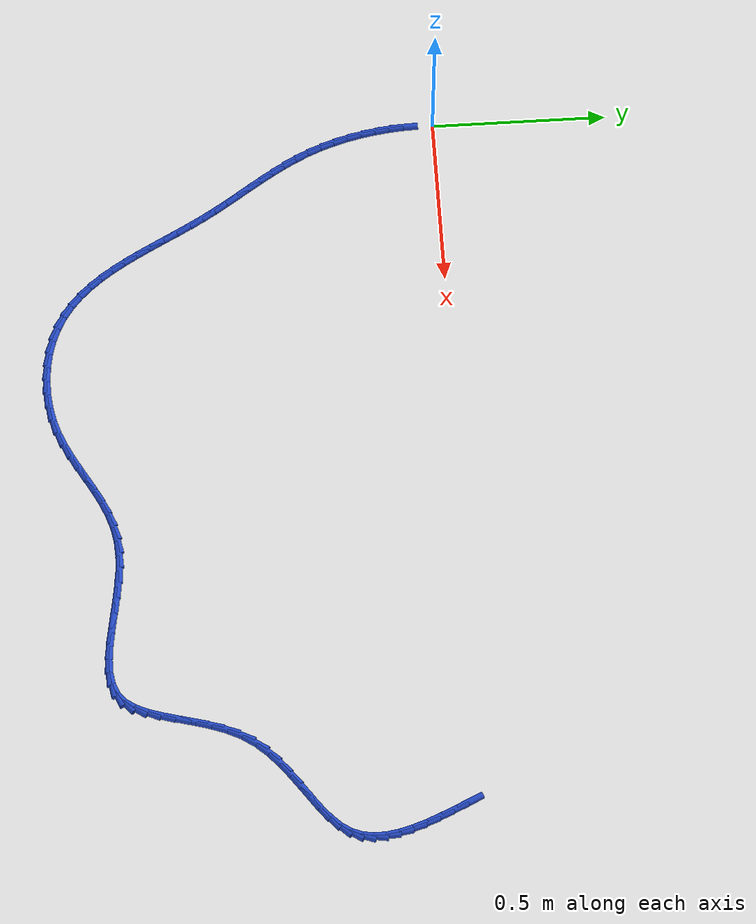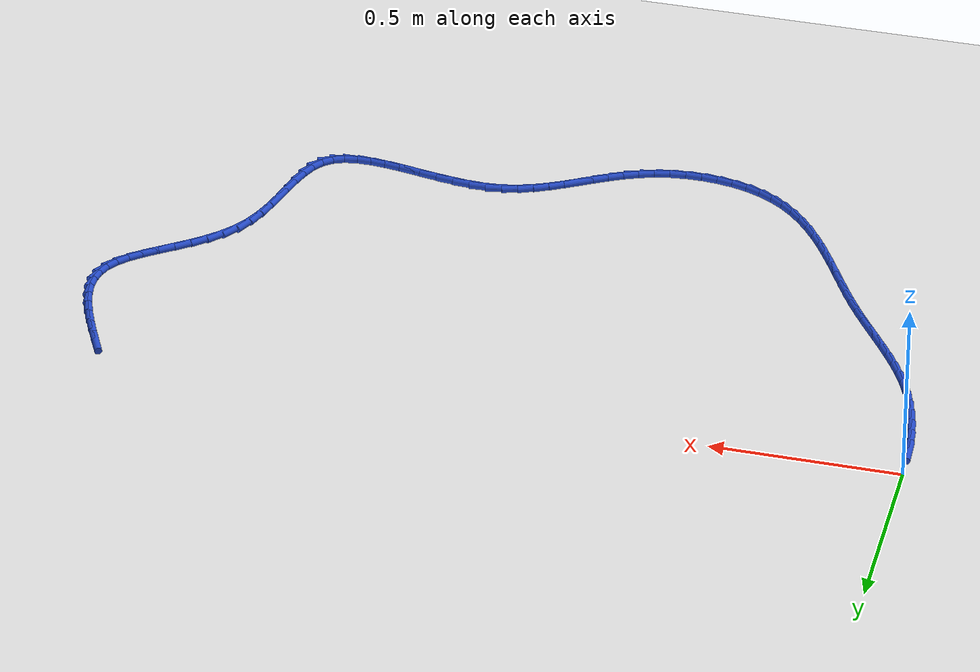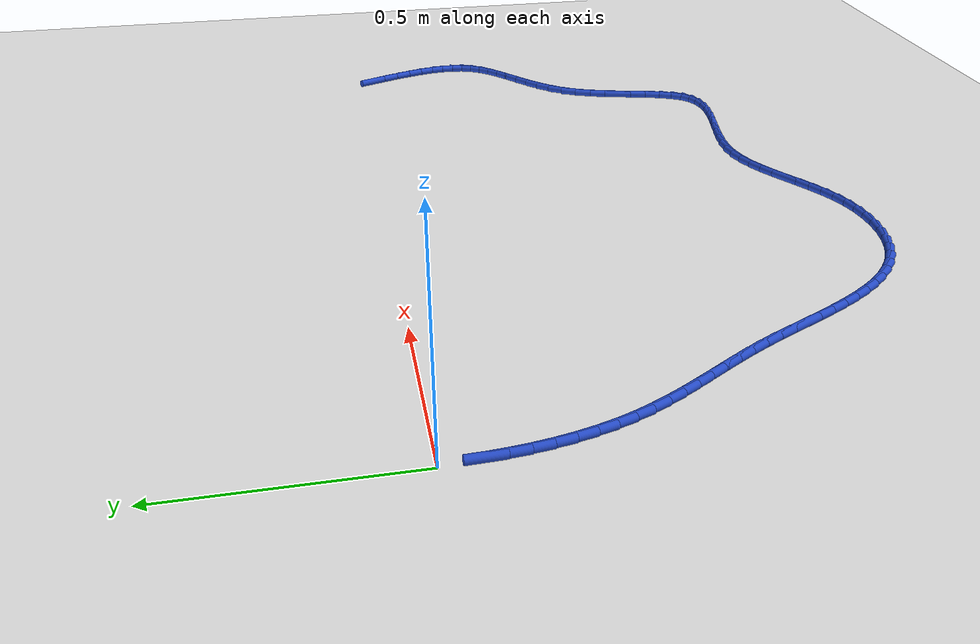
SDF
<sdf version="1.6">
 <world name="default">
  <model name="ground_plane">
   <static>1</static>
   <link name="link">
    <collision name="collision">
     <geometry><plane><normal>0 0 1</normal><size>100 100</size></plane></geometry>
     <surface><friction><ode><mu>100</mu><mu2>50</mu2></ode></friction></surface>
    </collision>
    <visual name="visual">
     <cast_shadows>0</cast_shadows>
     <geometry><plane><normal>0 0 1</normal><size>100 100</size></plane></geometry>
     <material>
      <script><uri>file://media/materials/scripts/gazebo.material</uri><name>Gazebo/WhiteGlow</name></script>
     </material>
    </visual>
   </link>
  </model>
  <model name="line">
   <link name="link_83">
    <pose>2.1221449141982656 -0.051328181934157016 0.01 0 1.57 -1.1310460525495147</pose>
    <collision name="collision">
     <geometry><cylinder><radius>0.01</radius><length>0.08</length></cylinder></geometry>
    </collision>
    <visual name="visual">
     <material>
      <script><name>Gazebo/Blue</name><uri>file://media/materials/scripts/gazebo.material</uri></script>
     </material>
     <geometry><cylinder><radius>0.01</radius><length>0.08</length></cylinder></geometry>
    </visual>
   </link>
   <link name="link_84">
    <pose>2.1419706922389095 -0.09346805633684824 0.01 0 1.57 -1.149286124274897</pose>
    <collision name="collision">
     <geometry><cylinder><radius>0.01</radius><length>0.08</length></cylinder></geometry>
    </collision>
    <visual name="visual">
     <material>
      <script><name>Gazebo/Blue</name><uri>file://media/materials/scripts/gazebo.material</uri></script>
     </material>
     <geometry><cylinder><radius>0.01</radius><length>0.08</length></cylinder></geometry>
    </visual>
   </link>
   <link name="link_85">
    <pose>2.1603775538515713 -0.13451950886848824 0.01 0 1.57 -1.1828577386332282</pose>
    <collision name="collision">
     <geometry><cylinder><radius>0.01</radius><length>0.08</length></cylinder></geometry>
    </collision>
    <visual name="visual">
     <material>
      <script><name>Gazebo/Blue</name><uri>file://media/materials/scripts/gazebo.material</uri></script>
     </material>
     <geometry><cylinder><radius>0.01</radius><length>0.08</length></cylinder></geometry>
    </visual>
   </link>
   <link name="link_86">
    <pose>2.176652065108952 -0.17434483989400337 0.01 0 1.57 -1.2348814770457108</pose>
    <collision name="collision">
     <geometry><cylinder><radius>0.01</radius><length>0.08</length></cylinder></geometry>
    </collision>
    <visual name="visual">
     <material>
      <script><name>Gazebo/Blue</name><uri>file://media/materials/scripts/gazebo.material</uri></script>
     </material>
     <geometry><cylinder><radius>0.01</radius><length>0.08</length></cylinder></geometry>
    </visual>
   </link>
   <link name="link_87">
    <pose>2.1900807920837515 -0.21280634977831975 0.01 0 1.57 -1.3098526611199754</pose>
    <collision name="collision">
     <geometry><cylinder><radius>0.01</radius><length>0.08</length></cylinder></geometry>
    </collision>
    <visual name="visual">
     <material>
      <script><name>Gazebo/Blue</name><uri>file://media/materials/scripts/gazebo.material</uri></script>
     </material>
     <geometry><cylinder><radius>0.01</radius><length>0.08</length></cylinder></geometry>
    </visual>
   </link>
   <link name="link_88">
    <pose>2.1999503008486725 -0.24976633888636351 0.01 0 1.57 -1.4136449834009839</pose>
    <collision name="collision">
     <geometry><cylinder><radius>0.01</radius><length>0.08</length></cylinder></geometry>
    </collision>
    <visual name="visual">
     <material>
      <script><name>Gazebo/Blue</name><uri>file://media/materials/scripts/gazebo.material</uri></script>
     </material>
     <geometry><cylinder><radius>0.01</radius><length>0.08</length></cylinder></geometry>
    </visual>
   </link>
   <link name="link_89">
    <pose>2.2055471574764147 -0.2850871075830613 0.01 0 1.57 -1.552590214383002</pose>
    <collision name="collision">
     <geometry><cylinder><radius>0.01</radius><length>0.08</length></cylinder></geometry>
    </collision>
    <visual name="visual">
     <material>
      <script><name>Gazebo/Blue</name><uri>file://media/materials/scripts/gazebo.material</uri></script>
     </material>
     <geometry><cylinder><radius>0.01</radius><length>0.08</length></cylinder></geometry>
    </visual>
   </link>
   <link name="link_90">
    <pose>2.206157928039679 -0.318630956233338 0.01 0 1.57 1.4112757804053835</pose>
    <collision name="collision">
     <geometry><cylinder><radius>0.01</radius><length>0.08</length></cylinder></geometry>
    </collision>
    <visual name="visual">
     <material>
      <script><name>Gazebo/Blue</name><uri>file://media/materials/scripts/gazebo.material</uri></script>
     </material>
     <geometry><cylinder><radius>0.01</radius><length>0.08</length></cylinder></geometry>
    </visual>
   </link>
   <link name="link_91">
    <pose>2.2010691786111654 -0.3502601852021201 0.01 0 1.57 1.1999176132072973</pose>
    <collision name="collision">
     <geometry><cylinder><radius>0.01</radius><length>0.08</length></cylinder></geometry>
    </collision>
    <visual name="visual">
     <material>
      <script><name>Gazebo/Blue</name><uri>file://media/materials/scripts/gazebo.material</uri></script>
     </material>
     <geometry><cylinder><radius>0.01</radius><length>0.08</length></cylinder></geometry>
    </visual>
   </link>
   <link name="link_92">
    <pose>2.1895674752635754 -0.37983709485433387 0.01 0 1.57 0.9772203071039703</pose>
    <collision name="collision">
     <geometry><cylinder><radius>0.01</radius><length>0.08</length></cylinder></geometry>
    </collision>
    <visual name="visual">
     <material>
      <script><name>Gazebo/Blue</name><uri>file://media/materials/scripts/gazebo.material</uri></script>
     </material>
     <geometry><cylinder><radius>0.01</radius><length>0.08</length></cylinder></geometry>
    </visual>
   </link>
   <link name="link_93">
    <pose>2.1710566766772836 -0.4072707719588012 0.01 0 1.57 0.8016169181544068</pose>
    <collision name="collision">
     <geometry><cylinder><radius>0.01</radius><length>0.08</length></cylinder></geometry>
    </collision>
    <visual name="visual">
     <material>
      <script><name>Gazebo/Blue</name><uri>file://media/materials/scripts/gazebo.material</uri></script>
     </material>
     <geometry><cylinder><radius>0.01</radius><length>0.08</length></cylinder></geometry>
    </visual>
   </link>
   <link name="link_94">
    <pose>2.146182162347543 -0.43296552881851696 0.01 0 1.57 0.6904937623066989</pose>
    <collision name="collision">
     <geometry><cylinder><radius>0.01</radius><length>0.08</length></cylinder></geometry>
    </collision>
    <visual name="visual">
     <material>
      <script><name>Gazebo/Blue</name><uri>file://media/materials/scripts/gazebo.material</uri></script>
     </material>
     <geometry><cylinder><radius>0.01</radius><length>0.08</length></cylinder></geometry>
    </visual>
   </link>
   <link name="link_95">
    <pose>2.116335925169082 -0.45762349152674275 0.01 0 1.57 0.6292855038953086</pose>
    <collision name="collision">
     <geometry><cylinder><radius>0.01</radius><length>0.08</length></cylinder></geometry>
    </collision>
    <visual name="visual">
     <material>
      <script><name>Gazebo/Blue</name><uri>file://media/materials/scripts/gazebo.material</uri></script>
     </material>
     <geometry><cylinder><radius>0.01</radius><length>0.08</length></cylinder></geometry>
    </visual>
   </link>
   <link name="link_96">
    <pose>2.0829201721769515 -0.48195086045647745 0.01 0 1.57 0.6068457539989377</pose>
    <collision name="collision">
     <geometry><cylinder><radius>0.01</radius><length>0.08</length></cylinder></geometry>
    </collision>
    <visual name="visual">
     <material>
      <script><name>Gazebo/Blue</name><uri>file://media/materials/scripts/gazebo.material</uri></script>
     </material>
     <geometry><cylinder><radius>0.01</radius><length>0.08</length></cylinder></geometry>
    </visual>
   </link>
   <link name="link_97">
    <pose>2.0473371104062026 -0.5066538359807197 0.01 0 1.57 0.6169958020085997</pose>
    <collision name="collision">
     <geometry><cylinder><radius>0.01</radius><length>0.08</length></cylinder></geometry>
    </collision>
    <visual name="visual">
     <material>
      <script><name>Gazebo/Blue</name><uri>file://media/materials/scripts/gazebo.material</uri></script>
     </material>
     <geometry><cylinder><radius>0.01</radius><length>0.08</length></cylinder></geometry>
    </visual>
   </link>
   <link name="link_98">
    <pose>2.010988946891888 -0.5324386184724681 0.01 0 1.57 0.6575006739496859</pose>
    <collision name="collision">
     <geometry><cylinder><radius>0.01</radius><length>0.08</length></cylinder></geometry>
    </collision>
    <visual name="visual">
     <material>
      <script><name>Gazebo/Blue</name><uri>file://media/materials/scripts/gazebo.material</uri></script>
     </material>
     <geometry><cylinder><radius>0.01</radius><length>0.08</length></cylinder></geometry>
    </visual>
   </link>
   <link name="link_99">
    <pose>1.9752778886690574 -0.5600114083047216 0.01 0 1.57 0.7289032862988073</pose>
    <collision name="collision">
     <geometry><cylinder><radius>0.01</radius><length>0.08</length></cylinder></geometry>
    </collision>
    <visual name="visual">
     <material>
      <script><name>Gazebo/Blue</name><uri>file://media/materials/scripts/gazebo.material</uri></script>
     </material>
     <geometry><cylinder><radius>0.01</radius><length>0.08</length></cylinder></geometry>
    </visual>
   </link>
   <link name="link_100">
    <pose>1.9416061427727658 -0.5900784058504782 0.01 0 1.57 0.8331931121926868</pose>
    <collision name="collision">
     <geometry><cylinder><radius>0.01</radius><length>0.08</length></cylinder></geometry>
    </collision>
    <visual name="visual">
     <material>
      <script><name>Gazebo/Blue</name><uri>file://media/materials/scripts/gazebo.material</uri></script>
     </material>
     <geometry><cylinder><radius>0.01</radius><length>0.08</length></cylinder></geometry>
    </visual>
   </link>
   <link name="link_101">
    <pose>1.9113759162380626 -0.6233458114827366 0.01 0 1.57 0.9713314672016443</pose>
    <collision name="collision">
     <geometry><cylinder><radius>0.01</radius><length>0.08</length></cylinder></geometry>
    </collision>
    <visual name="visual">
     <material>
      <script><name>Gazebo/Blue</name><uri>file://media/materials/scripts/gazebo.material</uri></script>
     </material>
     <geometry><cylinder><radius>0.01</radius><length>0.08</length></cylinder></geometry>
    </visual>
   </link>
   <link name="link_102">
    <pose>1.885978788766989 -0.6605113521606819 0.01 0 1.57 1.1151825138379325</pose>
    <collision name="collision">
     <geometry><cylinder><radius>0.01</radius><length>0.08</length></cylinder></geometry>
    </collision>
    <visual name="visual">
     <material>
      <script><name>Gazebo/Blue</name><uri>file://media/materials/scripts/gazebo.material</uri></script>
     </material>
     <geometry><cylinder><radius>0.01</radius><length>0.08</length></cylinder></geometry>
    </visual>
   </link>
   <link name="link_103">
    <pose>1.865878349828284 -0.7015328471683266 0.01 0 1.57 1.2190473718595025</pose>
    <collision name="collision">
     <geometry><cylinder><radius>0.01</radius><length>0.08</length></cylinder></geometry>
    </collision>
    <visual name="visual">
     <material>
      <script><name>Gazebo/Blue</name><uri>file://media/materials/scripts/gazebo.material</uri></script>
     </material>
     <geometry><cylinder><radius>0.01</radius><length>0.08</length></cylinder></geometry>
    </visual>
   </link>
   <link name="link_104">
    <pose>1.8499020555157666 -0.7450635895153016 0.01 0 1.57 1.2829819441138577</pose>
    <collision name="collision">
     <geometry><cylinder><radius>0.01</radius><length>0.08</length></cylinder></geometry>
    </collision>
    <visual name="visual">
     <material>
      <script><name>Gazebo/Blue</name><uri>file://media/materials/scripts/gazebo.material</uri></script>
     </material>
     <geometry><cylinder><radius>0.01</radius><length>0.08</length></cylinder></geometry>
    </visual>
   </link>
   <link name="link_105">
    <pose>1.8367106663142383 -0.7896239620187534 0.01 0 1.57 1.310554750537308</pose>
    <collision name="collision">
     <geometry><cylinder><radius>0.01</radius><length>0.08</length></cylinder></geometry>
    </collision>
    <visual name="visual">
     <material>
      <script><name>Gazebo/Blue</name><uri>file://media/materials/scripts/gazebo.material</uri></script>
     </material>
     <geometry><cylinder><radius>0.01</radius><length>0.08</length></cylinder></geometry>
    </visual>
   </link>
   <link name="link_106">
    <pose>1.8249649427085004 -0.8337343474958313 0.01 0 1.57 1.3015578972620674</pose>
    <collision name="collision">
     <geometry><cylinder><radius>0.01</radius><length>0.08</length></cylinder></geometry>
    </collision>
    <visual name="visual">
     <material>
      <script><name>Gazebo/Blue</name><uri>file://media/materials/scripts/gazebo.material</uri></script>
     </material>
     <geometry><cylinder><radius>0.01</radius><length>0.08</length></cylinder></geometry>
    </visual>
   </link>
   <link name="link_107">
    <pose>1.8133256451833544 -0.8759151287636833 0.01 0 1.57 1.2502473420100095</pose>
    <collision name="collision">
     <geometry><cylinder><radius>0.01</radius><length>0.08</length></cylinder></geometry>
    </collision>
    <visual name="visual">
     <material>
      <script><name>Gazebo/Blue</name><uri>file://media/materials/scripts/gazebo.material</uri></script>
     </material>
     <geometry><cylinder><radius>0.01</radius><length>0.08</length></cylinder></geometry>
    </visual>
   </link>
   <link name="link_108">
    <pose>1.8004535342236008 -0.9146866886394577 0.01 0 1.57 1.1431193470003191</pose>
    <collision name="collision">
     <geometry><cylinder><radius>0.01</radius><length>0.08</length></cylinder></geometry>
    </collision>
    <visual name="visual">
     <material>
      <script><name>Gazebo/Blue</name><uri>file://media/materials/scripts/gazebo.material</uri></script>
     </material>
     <geometry><cylinder><radius>0.01</radius><length>0.08</length></cylinder></geometry>
    </visual>
   </link>
   <link name="link_109">
    <pose>1.7850093703140417 -0.9485694099403027 0.01 0 1.57 0.9577453952877757</pose>
    <collision name="collision">
     <geometry><cylinder><radius>0.01</radius><length>0.08</length></cylinder></geometry>
    </collision>
    <visual name="visual">
     <material>
      <script><name>Gazebo/Blue</name><uri>file://media/materials/scripts/gazebo.material</uri></script>
     </material>
     <geometry><cylinder><radius>0.01</radius><length>0.08</length></cylinder></geometry>
    </visual>
   </link>
   <link name="link_110">
    <pose>1.7656539139394782 -0.9760836754833672 0.01 0 1.57 0.6774970103366826</pose>
    <collision name="collision">
     <geometry><cylinder><radius>0.01</radius><length>0.08</length></cylinder></geometry>
    </collision>
    <visual name="visual">
     <material>
      <script><name>Gazebo/Blue</name><uri>file://media/materials/scripts/gazebo.material</uri></script>
     </material>
     <geometry><cylinder><radius>0.01</radius><length>0.08</length></cylinder></geometry>
    </visual>
   </link>
   <link name="link_111">
    <pose>1.7411092324494375 -0.9958306068812881 0.01 0 1.57 0.3809018403734195</pose>
    <collision name="collision">
     <geometry><cylinder><radius>0.01</radius><length>0.08</length></cylinder></geometry>
    </collision>
    <visual name="visual">
     <material>
      <script><name>Gazebo/Blue</name><uri>file://media/materials/scripts/gazebo.material</uri></script>
     </material>
     <geometry><cylinder><radius>0.01</radius><length>0.08</length></cylinder></geometry>
    </visual>
   </link>
   <link name="link_112">
    <pose>1.711167745690479 -1.0078209390379245 0.01 0 1.57 0.15587096901408423</pose>
    <collision name="collision">
     <geometry><cylinder><radius>0.01</radius><length>0.08</length></cylinder></geometry>
    </collision>
    <visual name="visual">
     <material>
      <script><name>Gazebo/Blue</name><uri>file://media/materials/scripts/gazebo.material</uri></script>
     </material>
     <geometry><cylinder><radius>0.01</radius><length>0.08</length></cylinder></geometry>
    </visual>
   </link>
   <link name="link_113">
    <pose>1.6765318566405683 -1.013263819828912 0.01 0 1.57 0.0036976735674049545</pose>
    <collision name="collision">
     <geometry><cylinder><radius>0.01</radius><length>0.08</length></cylinder></geometry>
    </collision>
    <visual name="visual">
     <material>
      <script><name>Gazebo/Blue</name><uri>file://media/materials/scripts/gazebo.material</uri></script>
     </material>
     <geometry><cylinder><radius>0.01</radius><length>0.08</length></cylinder></geometry>
    </visual>
   </link>
   <link name="link_114">
    <pose>1.6379329361332544 -1.0134065466874942 0.01 0 1.57 -0.09320455095802892</pose>
    <collision name="collision">
     <geometry><cylinder><radius>0.01</radius><length>0.08</length></cylinder></geometry>
    </collision>
    <visual name="visual">
     <material>
      <script><name>Gazebo/Blue</name><uri>file://media/materials/scripts/gazebo.material</uri></script>
     </material>
     <geometry><cylinder><radius>0.01</radius><length>0.08</length></cylinder></geometry>
    </visual>
   </link>
   <link name="link_115">
    <pose>1.596102355002084 -1.0094964170469132 0.01 0 1.57 -0.1503469526568</pose>
    <collision name="collision">
     <geometry><cylinder><radius>0.01</radius><length>0.08</length></cylinder></geometry>
    </collision>
    <visual name="visual">
     <material>
      <script><name>Gazebo/Blue</name><uri>file://media/materials/scripts/gazebo.material</uri></script>
     </material>
     <geometry><cylinder><radius>0.01</radius><length>0.08</length></cylinder></geometry>
    </visual>
   </link>
   <link name="link_116">
    <pose>1.5517714840806074 -1.0027807283404124 0.01 0 1.57 -0.1775883723454564</pose>
    <collision name="collision">
     <geometry><cylinder><radius>0.01</radius><length>0.08</length></cylinder></geometry>
    </collision>
    <visual name="visual">
     <material>
      <script><name>Gazebo/Blue</name><uri>file://media/materials/scripts/gazebo.material</uri></script>
     </material>
     <geometry><cylinder><radius>0.01</radius><length>0.08</length></cylinder></geometry>
    </visual>
   </link>
   <link name="link_117">
    <pose>1.5056716942023711 -0.9945067780012347 0.01 0 1.57 -0.18015103517619752</pose>
    <collision name="collision">
     <geometry><cylinder><radius>0.01</radius><length>0.08</length></cylinder></geometry>
    </collision>
    <visual name="visual">
     <material>
      <script><name>Gazebo/Blue</name><uri>file://media/materials/scripts/gazebo.material</uri></script>
     </material>
     <geometry><cylinder><radius>0.01</radius><length>0.08</length></cylinder></geometry>
    </visual>
   </link>
   <link name="link_118">
    <pose>1.4585343562009232 -0.9859218634626229 0.01 0 1.57 -0.15983919565212196</pose>
    <collision name="collision">
     <geometry><cylinder><radius>0.01</radius><length>0.08</length></cylinder></geometry>
    </collision>
    <visual name="visual">
     <material>
      <script><name>Gazebo/Blue</name><uri>file://media/materials/scripts/gazebo.material</uri></script>
     </material>
     <geometry><cylinder><radius>0.01</radius><length>0.08</length></cylinder></geometry>
    </visual>
   </link>
   <link name="link_119">
    <pose>1.4110908409098115 -0.9782732821578195 0.01 0 1.57 -0.1157110352474262</pose>
    <collision name="collision">
     <geometry><cylinder><radius>0.01</radius><length>0.08</length></cylinder></geometry>
    </collision>
    <visual name="visual">
     <material>
      <script><name>Gazebo/Blue</name><uri>file://media/materials/scripts/gazebo.material</uri></script>
     </material>
     <geometry><cylinder><radius>0.01</radius><length>0.08</length></cylinder></geometry>
    </visual>
   </link>
   <link name="link_120">
    <pose>1.3640725191625842 -0.9728083315200681 0.01 0 1.57 -0.04432212299120968</pose>
    <collision name="collision">
     <geometry><cylinder><radius>0.01</radius><length>0.08</length></cylinder></geometry>
    </collision>
    <visual name="visual">
     <material>
      <script><name>Gazebo/Blue</name><uri>file://media/materials/scripts/gazebo.material</uri></script>
     </material>
     <geometry><cylinder><radius>0.01</radius><length>0.08</length></cylinder></geometry>
    </visual>
   </link>
   <link name="link_121">
    <pose>1.3182107617927883 -0.9707743089826111 0.01 0 1.57 0.060013116228178114</pose>
    <collision name="collision">
     <geometry><cylinder><radius>0.01</radius><length>0.08</length></cylinder></geometry>
    </collision>
    <visual name="visual">
     <material>
      <script><name>Gazebo/Blue</name><uri>file://media/materials/scripts/gazebo.material</uri></script>
     </material>
     <geometry><cylinder><radius>0.01</radius><length>0.08</length></cylinder></geometry>
    </visual>
   </link>
   <link name="link_122">
    <pose>1.2742359050974414 -0.9734165500061079 0.01 0 1.57 0.1888386646874113</pose>
    <collision name="collision">
     <geometry><cylinder><radius>0.01</radius><length>0.08</length></cylinder></geometry>
    </collision>
    <visual name="visual">
     <material>
      <script><name>Gazebo/Blue</name><uri>file://media/materials/scripts/gazebo.material</uri></script>
     </material>
     <geometry><cylinder><radius>0.01</radius><length>0.08</length></cylinder></geometry>
    </visual>
   </link>
   <link name="link_123">
    <pose>1.2325622537030225 -0.9813810439147568 0.01 0 1.57 0.30471556774949166</pose>
    <collision name="collision">
     <geometry><cylinder><radius>0.01</radius><length>0.08</length></cylinder></geometry>
    </collision>
    <visual name="visual">
     <material>
      <script><name>Gazebo/Blue</name><uri>file://media/materials/scripts/gazebo.material</uri></script>
     </material>
     <geometry><cylinder><radius>0.01</radius><length>0.08</length></cylinder></geometry>
    </visual>
   </link>
   <link name="link_124">
    <pose>1.1928442762169966 -0.9938727700809193 0.01 0 1.57 0.3967272012838111</pose>
    <collision name="collision">
     <geometry><cylinder><radius>0.01</radius><length>0.08</length></cylinder></geometry>
    </collision>
    <visual name="visual">
     <material>
      <script><name>Gazebo/Blue</name><uri>file://media/materials/scripts/gazebo.material</uri></script>
     </material>
     <geometry><cylinder><radius>0.01</radius><length>0.08</length></cylinder></geometry>
    </visual>
   </link>
   <link name="link_125">
    <pose>1.154624576093187 -1.0098845584188803 0.01 0 1.57 0.46225381977173646</pose>
    <collision name="collision">
     <geometry><cylinder><radius>0.01</radius><length>0.08</length></cylinder></geometry>
    </collision>
    <visual name="visual">
     <material>
      <script><name>Gazebo/Blue</name><uri>file://media/materials/scripts/gazebo.material</uri></script>
     </material>
     <geometry><cylinder><radius>0.01</radius><length>0.08</length></cylinder></geometry>
    </visual>
   </link>
   <link name="link_126">
    <pose>1.1174457567854172 -1.0284092388429256 0.01 0 1.57 0.5008052457674601</pose>
    <collision name="collision">
     <geometry><cylinder><radius>0.01</radius><length>0.08</length></cylinder></geometry>
    </collision>
    <visual name="visual">
     <material>
      <script><name>Gazebo/Blue</name><uri>file://media/materials/scripts/gazebo.material</uri></script>
     </material>
     <geometry><cylinder><radius>0.01</radius><length>0.08</length></cylinder></geometry>
    </visual>
   </link>
   <link name="link_127">
    <pose>1.0808504217475121 -1.0484396412673394 0.01 0 1.57 0.5127019078143443</pose>
    <collision name="collision">
     <geometry><cylinder><radius>0.01</radius><length>0.08</length></cylinder></geometry>
    </collision>
    <visual name="visual">
     <material>
      <script><name>Gazebo/Blue</name><uri>file://media/materials/scripts/gazebo.material</uri></script>
     </material>
     <geometry><cylinder><radius>0.01</radius><length>0.08</length></cylinder></geometry>
    </visual>
   </link>
   <link name="link_128">
    <pose>1.0443811744332951 -1.0689685956064072 0.01 0 1.57 0.4982424967425458</pose>
    <collision name="collision">
     <geometry><cylinder><radius>0.01</radius><length>0.08</length></cylinder></geometry>
    </collision>
    <visual name="visual">
     <material>
      <script><name>Gazebo/Blue</name><uri>file://media/materials/scripts/gazebo.material</uri></script>
     </material>
     <geometry><cylinder><radius>0.01</radius><length>0.08</length></cylinder></geometry>
    </visual>
   </link>
   <link name="link_129">
    <pose>1.0075806182965896 -1.0889889317744144 0.01 0 1.57 0.4574548330741018</pose>
    <collision name="collision">
     <geometry><cylinder><radius>0.01</radius><length>0.08</length></cylinder></geometry>
    </collision>
    <visual name="visual">
     <material>
      <script><name>Gazebo/Blue</name><uri>file://media/materials/scripts/gazebo.material</uri></script>
     </material>
     <geometry><cylinder><radius>0.01</radius><length>0.08</length></cylinder></geometry>
    </visual>
   </link>
   <link name="link_130">
    <pose>0.9699913567912197 -1.1074934796856457 0.01 0 1.57 0.3903991340634426</pose>
    <collision name="collision">
     <geometry><cylinder><radius>0.01</radius><length>0.08</length></cylinder></geometry>
    </collision>
    <visual name="visual">
     <material>
      <script><name>Gazebo/Blue</name><uri>file://media/materials/scripts/gazebo.material</uri></script>
     </material>
     <geometry><cylinder><radius>0.01</radius><length>0.08</length></cylinder></geometry>
    </visual>
   </link>
   <link name="link_131">
    <pose>0.9311559933710081 -1.123475069254387 0.01 0 1.57 0.29874591771515</pose>
    <collision name="collision">
     <geometry><cylinder><radius>0.01</radius><length>0.08</length></cylinder></geometry>
    </collision>
    <visual name="visual">
     <material>
      <script><name>Gazebo/Blue</name><uri>file://media/materials/scripts/gazebo.material</uri></script>
     </material>
     <geometry><cylinder><radius>0.01</radius><length>0.08</length></cylinder></geometry>
    </visual>
   </link>
   <link name="link_132">
    <pose>0.8906433595762794 -1.1359514492478286 0.01 0 1.57 0.19916846499979843</pose>
    <collision name="collision">
     <geometry><cylinder><radius>0.01</radius><length>0.08</length></cylinder></geometry>
    </collision>
    <visual name="visual">
     <material>
      <script><name>Gazebo/Blue</name><uri>file://media/materials/scripts/gazebo.material</uri></script>
     </material>
     <geometry><cylinder><radius>0.01</radius><length>0.08</length></cylinder></geometry>
    </visual>
   </link>
   <link name="link_133">
    <pose>0.8485552276746857 -1.1444467062322536 0.01 0 1.57 0.1043447346162639</pose>
    <collision name="collision">
     <geometry><cylinder><radius>0.01</radius><length>0.08</length></cylinder></geometry>
    </collision>
    <visual name="visual">
     <material>
      <script><name>Gazebo/Blue</name><uri>file://media/materials/scripts/gazebo.material</uri></script>
     </material>
     <geometry><cylinder><radius>0.01</radius><length>0.08</length></cylinder></geometry>
    </visual>
   </link>
   <link name="link_134">
    <pose>0.8054899521259692 -1.1489567209553893 0.01 0 1.57 0.01240353286342611</pose>
    <collision name="collision">
     <geometry><cylinder><radius>0.01</radius><length>0.08</length></cylinder></geometry>
    </collision>
    <visual name="visual">
     <material>
      <script><name>Gazebo/Blue</name><uri>file://media/materials/scripts/gazebo.material</uri></script>
     </material>
     <geometry><cylinder><radius>0.01</radius><length>0.08</length></cylinder></geometry>
    </visual>
   </link>
   <link name="link_135">
    <pose>0.7620648323856821 -1.1494953734789404 0.01 0 1.57 -0.07903388524358554</pose>
    <collision name="collision">
     <geometry><cylinder><radius>0.01</radius><length>0.08</length></cylinder></geometry>
    </collision>
    <visual name="visual">
     <material>
      <script><name>Gazebo/Blue</name><uri>file://media/materials/scripts/gazebo.material</uri></script>
     </material>
     <geometry><cylinder><radius>0.01</radius><length>0.08</length></cylinder></geometry>
    </visual>
   </link>
   <link name="link_136">
    <pose>0.7188971679093756 -1.1460765438646108 0.01 0 1.57 -0.17235474591522873</pose>
    <collision name="collision">
     <geometry><cylinder><radius>0.01</radius><length>0.08</length></cylinder></geometry>
    </collision>
    <visual name="visual">
     <material>
      <script><name>Gazebo/Blue</name><uri>file://media/materials/scripts/gazebo.material</uri></script>
     </material>
     <geometry><cylinder><radius>0.01</radius><length>0.08</length></cylinder></geometry>
    </visual>
   </link>
   <link name="link_137">
    <pose>0.6766042581526036 -1.1387141121741056 0.01 0 1.57 -0.27000421098822847</pose>
    <collision name="collision">
     <geometry><cylinder><radius>0.01</radius><length>0.08</length></cylinder></geometry>
    </collision>
    <visual name="visual">
     <material>
      <script><name>Gazebo/Blue</name><uri>file://media/materials/scripts/gazebo.material</uri></script>
     </material>
     <geometry><cylinder><radius>0.01</radius><length>0.08</length></cylinder></geometry>
    </visual>
   </link>
   <link name="link_138">
    <pose>0.6358034025709173 -1.127421958469128 0.01 0 1.57 -0.3745074111956244</pose>
    <collision name="collision">
     <geometry><cylinder><radius>0.01</radius><length>0.08</length></cylinder></geometry>
    </collision>
    <visual name="visual">
     <material>
      <script><name>Gazebo/Blue</name><uri>file://media/materials/scripts/gazebo.material</uri></script>
     </material>
     <geometry><cylinder><radius>0.01</radius><length>0.08</length></cylinder></geometry>
    </visual>
   </link>
   <link name="link_139">
    <pose>0.5971119006198687 -1.1122139628113838 0.01 0 1.57 -0.48819410046572603</pose>
    <collision name="collision">
     <geometry><cylinder><radius>0.01</radius><length>0.08</length></cylinder></geometry>
    </collision>
    <visual name="visual">
     <material>
      <script><name>Gazebo/Blue</name><uri>file://media/materials/scripts/gazebo.material</uri></script>
     </material>
     <geometry><cylinder><radius>0.01</radius><length>0.08</length></cylinder></geometry>
    </visual>
   </link>
   <link name="link_140">
    <pose>0.5611363257675105 -1.0931083893370508 0.01 0 1.57 -0.6044132523220923</pose>
    <collision name="collision">
     <geometry><cylinder><radius>0.01</radius><length>0.08</length></cylinder></geometry>
    </collision>
    <visual name="visual">
     <material>
      <script><name>Gazebo/Blue</name><uri>file://media/materials/scripts/gazebo.material</uri></script>
     </material>
     <geometry><cylinder><radius>0.01</radius><length>0.08</length></cylinder></geometry>
    </visual>
   </link>
   <link name="link_141">
    <pose>0.528088915464286 -1.0702846806723267 0.01 0 1.57 -0.7104335778236963</pose>
    <collision name="collision">
     <geometry><cylinder><radius>0.01</radius><length>0.08</length></cylinder></geometry>
    </collision>
    <visual name="visual">
     <material>
      <script><name>Gazebo/Blue</name><uri>file://media/materials/scripts/gazebo.material</uri></script>
     </material>
     <geometry><cylinder><radius>0.01</radius><length>0.08</length></cylinder></geometry>
    </visual>
   </link>
   <link name="link_142">
    <pose>0.4976823747508637 -1.044126455262829 0.01 0 1.57 -0.8030750391258803</pose>
    <collision name="collision">
     <geometry><cylinder><radius>0.01</radius><length>0.08</length></cylinder></geometry>
    </collision>
    <visual name="visual">
     <material>
      <script><name>Gazebo/Blue</name><uri>file://media/materials/scripts/gazebo.material</uri></script>
     </material>
     <geometry><cylinder><radius>0.01</radius><length>0.08</length></cylinder></geometry>
    </visual>
   </link>
   <link name="link_143">
    <pose>0.4695972739182773 -1.0150304661150404 0.01 0 1.57 -0.8813242673691766</pose>
    <collision name="collision">
     <geometry><cylinder><radius>0.01</radius><length>0.08</length></cylinder></geometry>
    </collision>
    <visual name="visual">
     <material>
      <script><name>Gazebo/Blue</name><uri>file://media/materials/scripts/gazebo.material</uri></script>
     </material>
     <geometry><cylinder><radius>0.01</radius><length>0.08</length></cylinder></geometry>
    </visual>
   </link>
   <link name="link_144">
    <pose>0.44351418325755904 -0.9833934662354411 0.01 0 1.57 -0.9452541845872768</pose>
    <collision name="collision">
     <geometry><cylinder><radius>0.01</radius><length>0.08</length></cylinder></geometry>
    </collision>
    <visual name="visual">
     <material>
      <script><name>Gazebo/Blue</name><uri>file://media/materials/scripts/gazebo.material</uri></script>
     </material>
     <geometry><cylinder><radius>0.01</radius><length>0.08</length></cylinder></geometry>
    </visual>
   </link>
   <link name="link_145">
    <pose>0.41911367305974145 -0.9496122086305118 0.01 0 1.57 -0.9955366041332165</pose>
    <collision name="collision">
     <geometry><cylinder><radius>0.01</radius><length>0.08</length></cylinder></geometry>
    </collision>
    <visual name="visual">
     <material>
      <script><name>Gazebo/Blue</name><uri>file://media/materials/scripts/gazebo.material</uri></script>
     </material>
     <geometry><cylinder><radius>0.01</radius><length>0.08</length></cylinder></geometry>
    </visual>
   </link>
   <link name="link_146">
    <pose>0.3960763136158573 -0.9140834463067338 0.01 0 1.57 -1.0330541672355649</pose>
    <collision name="collision">
     <geometry><cylinder><radius>0.01</radius><length>0.08</length></cylinder></geometry>
    </collision>
    <visual name="visual">
     <material>
      <script><name>Gazebo/Blue</name><uri>file://media/materials/scripts/gazebo.material</uri></script>
     </material>
     <geometry><cylinder><radius>0.01</radius><length>0.08</length></cylinder></geometry>
    </visual>
   </link>
   <link name="link_147">
    <pose>0.3740826752169389 -0.8772039322705871 0.01 0 1.57 -1.0586479197360021</pose>
    <collision name="collision">
     <geometry><cylinder><radius>0.01</radius><length>0.08</length></cylinder></geometry>
    </collision>
    <visual name="visual">
     <material>
      <script><name>Gazebo/Blue</name><uri>file://media/materials/scripts/gazebo.material</uri></script>
     </material>
     <geometry><cylinder><radius>0.01</radius><length>0.08</length></cylinder></geometry>
    </visual>
   </link>
   <link name="link_148">
    <pose>0.3528133281540197 -0.8393704195285543 0.01 0 1.57 -1.0729751442915776</pose>
    <collision name="collision">
     <geometry><cylinder><radius>0.01</radius><length>0.08</length></cylinder></geometry>
    </collision>
    <visual name="visual">
     <material>
      <script><name>Gazebo/Blue</name><uri>file://media/materials/scripts/gazebo.material</uri></script>
     </material>
     <geometry><cylinder><radius>0.01</radius><length>0.08</length></cylinder></geometry>
    </visual>
   </link>
   <link name="link_149">
    <pose>0.331948842718132 -0.8009796610871155 0.01 0 1.57 -1.0764390444707779</pose>
    <collision name="collision">
     <geometry><cylinder><radius>0.01</radius><length>0.08</length></cylinder></geometry>
    </collision>
    <visual name="visual">
     <material>
      <script><name>Gazebo/Blue</name><uri>file://media/materials/scripts/gazebo.material</uri></script>
     </material>
     <geometry><cylinder><radius>0.01</radius><length>0.08</length></cylinder></geometry>
    </visual>
   </link>
   <link name="link_150">
    <pose>0.31116978920030847 -0.7624284099527516 0.01 0 1.57 -1.069160073868795</pose>
    <collision name="collision">
     <geometry><cylinder><radius>0.01</radius><length>0.08</length></cylinder></geometry>
    </collision>
    <visual name="visual">
     <material>
      <script><name>Gazebo/Blue</name><uri>file://media/materials/scripts/gazebo.material</uri></script>
     </material>
     <geometry><cylinder><radius>0.01</radius><length>0.08</length></cylinder></geometry>
    </visual>
   </link>
   <link name="link_151">
    <pose>0.2901567378915818 -0.7241134191319438 0.01 0 1.57 -1.0509718849714977</pose>
    <collision name="collision">
     <geometry><cylinder><radius>0.01</radius><length>0.08</length></cylinder></geometry>
    </collision>
    <visual name="visual">
     <material>
      <script><name>Gazebo/Blue</name><uri>file://media/materials/scripts/gazebo.material</uri></script>
     </material>
     <geometry><cylinder><radius>0.01</radius><length>0.08</length></cylinder></geometry>
    </visual>
   </link>
   <link name="link_152">
    <pose>0.2685902590829848 -0.686431441631173 0.01 0 1.57 -1.0224629262205027</pose>
    <collision name="collision">
     <geometry><cylinder><radius>0.01</radius><length>0.08</length></cylinder></geometry>
    </collision>
    <visual name="visual">
     <material>
      <script><name>Gazebo/Blue</name><uri>file://media/materials/scripts/gazebo.material</uri></script>
     </material>
     <geometry><cylinder><radius>0.01</radius><length>0.08</length></cylinder></geometry>
    </visual>
   </link>
   <link name="link_153">
    <pose>0.2461829816358782 -0.6497471812813829 0.01 0 1.57 -0.9956517969565644</pose>
    <collision name="collision">
     <geometry><cylinder><radius>0.01</radius><length>0.08</length></cylinder></geometry>
    </collision>
    <visual name="visual">
     <material>
      <script><name>Gazebo/Blue</name><uri>file://media/materials/scripts/gazebo.material</uri></script>
     </material>
     <geometry><cylinder><radius>0.01</radius><length>0.08</length></cylinder></geometry>
    </visual>
   </link>
   <link name="link_154">
    <pose>0.22303467953254552 -0.614038310245814 0.01 0 1.57 -0.9790258162656668</pose>
    <collision name="collision">
     <geometry><cylinder><radius>0.01</radius><length>0.08</length></cylinder></geometry>
    </collision>
    <visual name="visual">
     <material>
      <script><name>Gazebo/Blue</name><uri>file://media/materials/scripts/gazebo.material</uri></script>
     </material>
     <geometry><cylinder><radius>0.01</radius><length>0.08</length></cylinder></geometry>
    </visual>
   </link>
   <link name="link_155">
    <pose>0.19950194207553903 -0.57902576062739 0.01 0 1.57 -0.9730656882693437</pose>
    <collision name="collision">
     <geometry><cylinder><radius>0.01</radius><length>0.08</length></cylinder></geometry>
    </collision>
    <visual name="visual">
     <material>
      <script><name>Gazebo/Blue</name><uri>file://media/materials/scripts/gazebo.material</uri></script>
     </material>
     <geometry><cylinder><radius>0.01</radius><length>0.08</length></cylinder></geometry>
    </visual>
   </link>
   <link name="link_156">
    <pose>0.17594596673042953 -0.5444258577164425 0.01 0 1.57 -0.9780410659084233</pose>
    <collision name="collision">
     <geometry><cylinder><radius>0.01</radius><length>0.08</length></cylinder></geometry>
    </collision>
    <visual name="visual">
     <material>
      <script><name>Gazebo/Blue</name><uri>file://media/materials/scripts/gazebo.material</uri></script>
     </material>
     <geometry><cylinder><radius>0.01</radius><length>0.08</length></cylinder></geometry>
    </visual>
   </link>
   <link name="link_157">
    <pose>0.15272795096278785 -0.5099549268033032 0.01 0 1.57 -0.994173518868506</pose>
    <collision name="collision">
     <geometry><cylinder><radius>0.01</radius><length>0.08</length></cylinder></geometry>
    </collision>
    <visual name="visual">
     <material>
      <script><name>Gazebo/Blue</name><uri>file://media/materials/scripts/gazebo.material</uri></script>
     </material>
     <geometry><cylinder><radius>0.01</radius><length>0.08</length></cylinder></geometry>
    </visual>
   </link>
   <link name="link_158">
    <pose>0.1302090922381845 -0.4753292931783036 0.01 0 1.57 -1.0216139019779824</pose>
    <collision name="collision">
     <geometry><cylinder><radius>0.01</radius><length>0.08</length></cylinder></geometry>
    </collision>
    <visual name="visual">
     <material>
      <script><name>Gazebo/Blue</name><uri>file://media/materials/scripts/gazebo.material</uri></script>
     </material>
     <geometry><cylinder><radius>0.01</radius><length>0.08</length></cylinder></geometry>
    </visual>
   </link>
   <link name="link_159">
    <pose>0.10875058802219108 -0.4402652821317762 0.01 0 1.57 -1.0603769978900432</pose>
    <collision name="collision">
     <geometry><cylinder><radius>0.01</radius><length>0.08</length></cylinder></geometry>
    </collision>
    <visual name="visual">
     <material>
      <script><name>Gazebo/Blue</name><uri>file://media/materials/scripts/gazebo.material</uri></script>
     </material>
     <geometry><cylinder><radius>0.01</radius><length>0.08</length></cylinder></geometry>
    </visual>
   </link>
   <link name="link_160">
    <pose>0.08871363578037807 -0.40447921895405264 0.01 0 1.57 -1.1102344141849008</pose>
    <collision name="collision">
     <geometry><cylinder><radius>0.01</radius><length>0.08</length></cylinder></geometry>
    </collision>
    <visual name="visual">
     <material>
      <script><name>Gazebo/Blue</name><uri>file://media/materials/scripts/gazebo.material</uri></script>
     </material>
     <geometry><cylinder><radius>0.01</radius><length>0.08</length></cylinder></geometry>
    </visual>
   </link>
   <link name="link_161">
    <pose>0.07045943297831632 -0.3676874289354645 0.01 0 1.57 -1.169300226904096</pose>
    <collision name="collision">
     <geometry><cylinder><radius>0.01</radius><length>0.08</length></cylinder></geometry>
    </collision>
    <visual name="visual">
     <material>
      <script><name>Gazebo/Blue</name><uri>file://media/materials/scripts/gazebo.material</uri></script>
     </material>
     <geometry><cylinder><radius>0.01</radius><length>0.08</length></cylinder></geometry>
    </visual>
   </link>
   <link name="link_162">
    <pose>0.05431121365928056 -0.3296520503590916 0.01 0 1.57 -1.2283836597701911</pose>
    <collision name="collision">
     <geometry><cylinder><radius>0.01</radius><length>0.08</length></cylinder></geometry>
    </collision>
    <visual name="visual">
     <material>
      <script><name>Gazebo/Blue</name><uri>file://media/materials/scripts/gazebo.material</uri></script>
     </material>
     <geometry><cylinder><radius>0.01</radius><length>0.08</length></cylinder></geometry>
    </visual>
   </link>
   <link name="link_163">
    <pose>0.04033565207902952 -0.29044482930873294 0.01 0 1.57 -1.2841708955487794</pose>
    <collision name="collision">
     <geometry><cylinder><radius>0.01</radius><length>0.08</length></cylinder></geometry>
    </collision>
    <visual name="visual">
     <material>
      <script><name>Gazebo/Blue</name><uri>file://media/materials/scripts/gazebo.material</uri></script>
     </material>
     <geometry><cylinder><radius>0.01</radius><length>0.08</length></cylinder></geometry>
    </visual>
   </link>
   <link name="link_164">
    <pose>0.028493199083671397 -0.2502656987386476 0.01 0 1.57 -1.3370747087772237</pose>
    <collision name="collision">
     <geometry><cylinder><radius>0.01</radius><length>0.08</length></cylinder></geometry>
    </collision>
    <visual name="visual">
     <material>
      <script><name>Gazebo/Blue</name><uri>file://media/materials/scripts/gazebo.material</uri></script>
     </material>
     <geometry><cylinder><radius>0.01</radius><length>0.08</length></cylinder></geometry>
    </visual>
   </link>
   <link name="link_165">
    <pose>0.018743966076879698 -0.2093150012309091 0.01 0 1.57 -1.387530508921746</pose>
    <collision name="collision">
     <geometry><cylinder><radius>0.01</radius><length>0.08</length></cylinder></geometry>
    </collision>
    <visual name="visual">
     <material>
      <script><name>Gazebo/Blue</name><uri>file://media/materials/scripts/gazebo.material</uri></script>
     </material>
     <geometry><cylinder><radius>0.01</radius><length>0.08</length></cylinder></geometry>
    </visual>
   </link>
   <link name="link_166">
    <pose>0.011048064462328203 -0.16779307936759105 0.01 0 1.57 -1.4359763197811164</pose>
    <collision name="collision">
     <geometry><cylinder><radius>0.01</radius><length>0.08</length></cylinder></geometry>
    </collision>
    <visual name="visual">
     <material>
      <script><name>Gazebo/Blue</name><uri>file://media/materials/scripts/gazebo.material</uri></script>
     </material>
     <geometry><cylinder><radius>0.01</radius><length>0.08</length></cylinder></geometry>
    </visual>
   </link>
   <link name="link_167">
    <pose>0.005365605643690699 -0.12590027573076729 0.01 0 1.57 -1.4828495045927585</pose>
    <collision name="collision">
     <geometry><cylinder><radius>0.01</radius><length>0.08</length></cylinder></geometry>
    </collision>
    <visual name="visual">
     <material>
      <script><name>Gazebo/Blue</name><uri>file://media/materials/scripts/gazebo.material</uri></script>
     </material>
     <geometry><cylinder><radius>0.01</radius><length>0.08</length></cylinder></geometry>
    </visual>
   </link>
   <link name="link_168">
    <pose>0.0016567010246409187 -0.083836932902511 0.01 0 1.57 -1.5285875413839793</pose>
    <collision name="collision">
     <geometry><cylinder><radius>0.01</radius><length>0.08</length></cylinder></geometry>
    </collision>
    <visual name="visual">
     <material>
      <script><name>Gazebo/Blue</name><uri>file://media/materials/scripts/gazebo.material</uri></script>
     </material>
     <geometry><cylinder><radius>0.01</radius><length>0.08</length></cylinder></geometry>
    </visual>
   </link>
  </model>
 </world>
</sdf>
